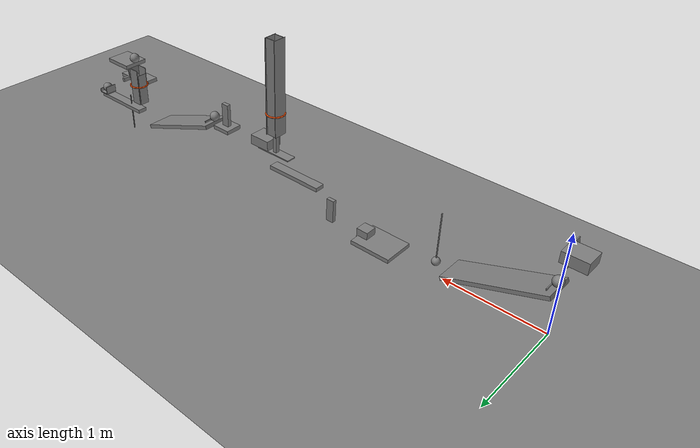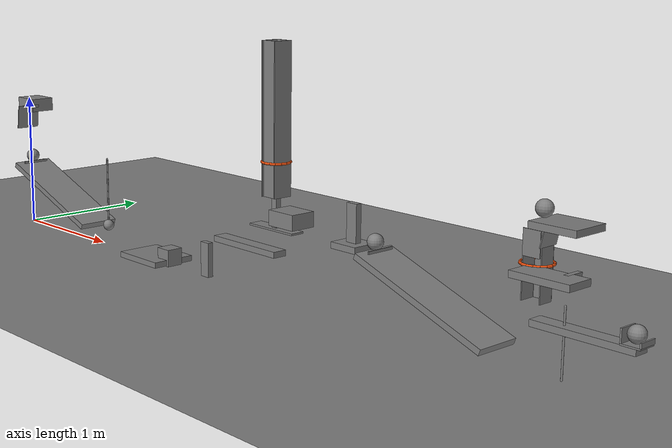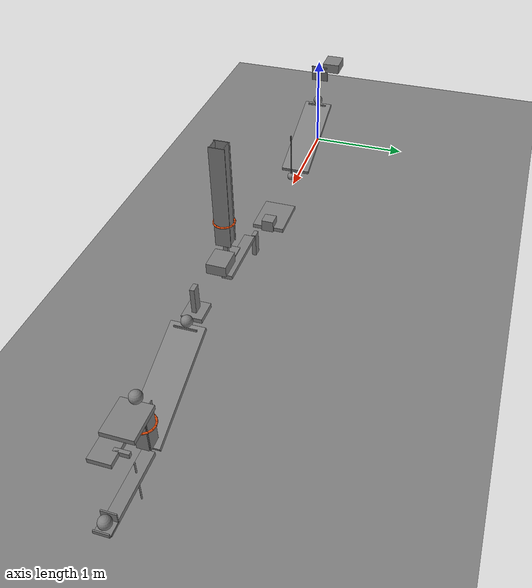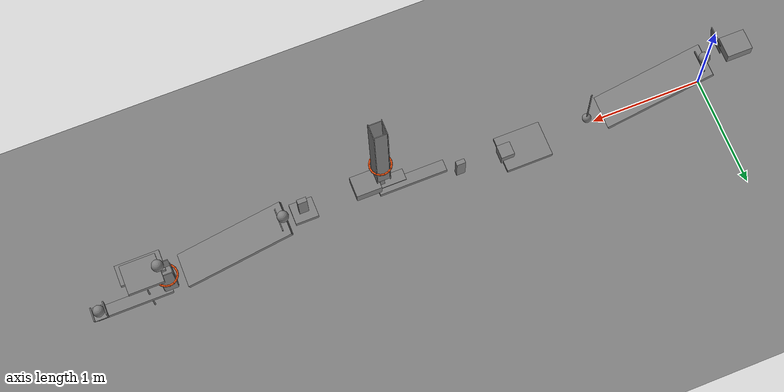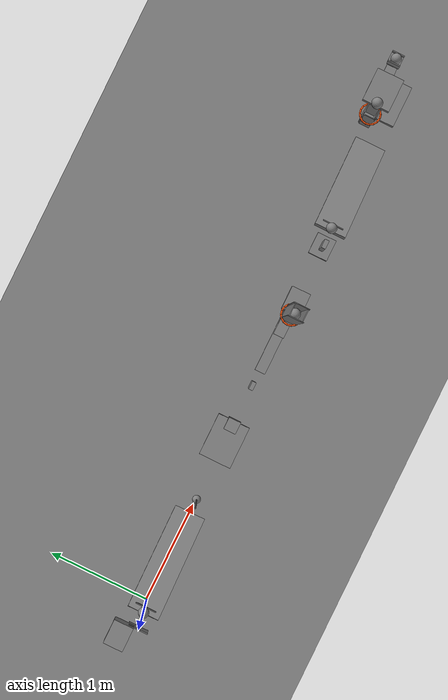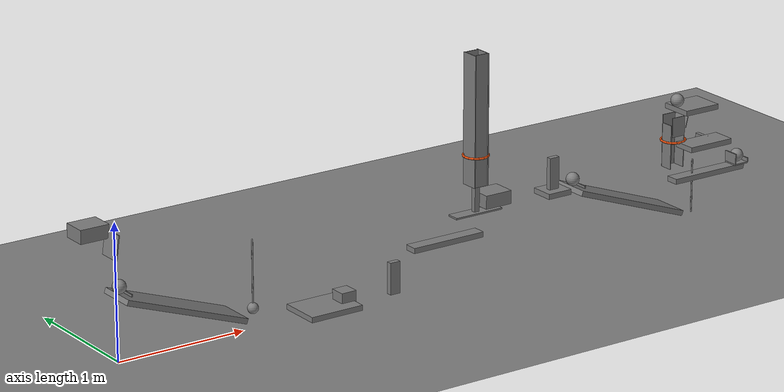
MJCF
<mujoco model="spring_and_gravity_cascade_revision">
  <compiler angle="radian"/>
  <option timestep="0.002"/>
  <worldbody>
    <geom name="floor" type="plane" size="12 12 0.1" friction="0.68 0 0"/>
    <body name="ramp1">
      <geom name="ramp1" type="box" pos="0.469847 0 0.302216" size="0.5 0.15 0.02" euler="0 0.349066 0" friction="0.68 0 0" solref="0.01 0.690107"/>
    </body>
    <body name="ball1 cradle lip">
      <geom name="ball1 cradle lip" type="box" pos="0.063648 0 0.495004" size="0.004 0.1 0.009" friction="0.68 0 0" solref="0.01 0.690107"/>
    </body>
    <body name="ball1" pos="0.023941 0 0.539004">
      <freejoint/>
      <geom name="ball1" type="sphere" pos="0 0 0" size="0.05" mass="0.2" condim="6" friction="0.68 0 0" solref="0.01 0.690107"/>
    </body>
    <body name="cart1" pos="-0.126059 0.13 0.929004">
      <joint name="cart1_axial_slide" type="slide" pos="0 0 0" axis="0 0 1" limited="true" range="-0.62 0.2" stiffness="18" springref="0" damping="0.2"/>
      <geom name="cart1" type="box" pos="0 0 0" size="0.11 0.09 0.05" mass="0.5" friction="0.68 0 0" solref="0.01 0.690107"/>
      <geom name="cart1 pushing face" type="box" pos="0.0965255 -0.13 -0.082485" size="0.0899999 0.09 0.004" euler="0 -1.43117 0" mass="0.001" friction="0.68 0 0" solref="0.01 0.690107"/>
    </body>
    <body name="pendulum1" pos="1.07969 0 0.65">
      <joint name="pendulum1_pendulum_hinge" type="hinge" pos="0 0 0" axis="0 1 0" limited="true" range="-0.698132 0" damping="0.04"/>
      <geom name="pendulum1_bob" type="sphere" pos="0 0 -0.5" size="0.04" mass="0.3" friction="0.68 0 0" solref="0.01 0.690107"/>
      <geom name="pendulum1_rod" type="capsule" size="0.006" fromto="0 0 0 0 0 -0.46" mass="0.05" friction="0.68 0 0" solref="0.01 0.690107"/>
    </body>
    <body name="door1" pos="1.46109 0 0.025">
      <joint name="door1_hinge" type="hinge" pos="0 0 0" axis="0 1 0" limited="true" range="-1.5708 -0.349066" damping="0.04"/>
      <geom name="door1" type="box" pos="0.21 0 0" size="0.21 0.16 0.02" mass="0.45" friction="0.68 0 0" solref="0.01 0.690107"/>
    </body>
    <body name="block1" pos="1.83709 0 0.06">
      <freejoint/>
      <geom name="block1" type="box" pos="0 0 0" size="0.06 0.06 0.06" mass="0.35" friction="0.68 0 0" solref="0.01 0.690107"/>
    </body>
    <body name="domino1" pos="2.25709 0 0.12">
      <freejoint/>
      <geom name="domino1" type="box" pos="0 0 0" size="0.04 0.02 0.12" mass="0.25" friction="0.68 0 0" solref="0.01 0.690107"/>
    </body>
    <body name="lever1" pos="2.70197 0 0.300841">
      <joint name="lever1_hinge" type="hinge" pos="0 0 0" axis="0 1 0" limited="true" range="-1.27409 -0.488692" damping="0.04"/>
      <geom name="lever1" type="box" pos="0 0 0" size="0.3 0.05 0.02" mass="0.5" friction="0.68 0 0" solref="0.01 0.690107"/>
    </body>
    <body name="lever1 follower" pos="2.96685 0 0.464">
      <joint name="lever1_follower_slide" type="slide" pos="0 0 0" axis="0 0 1" limited="true" range="-0.01 0.3" damping="0.2"/>
      <geom name="lever1 follower" type="box" pos="0 0 0" size="0.2 0.05 0.006" mass="0.006" friction="0.68 0 0" solref="0.01 0.690107"/>
      <geom name="lever1 follower stem" type="box" pos="0 0 0.346" size="0.02 0.02 0.34" mass="0.002" friction="0.68 0 0" solref="0.01 0.690107"/>
      <geom name="lever1 ball seat" type="box" pos="0 0 0.692" size="0.045 0.045 0.006" mass="0.002" friction="0.68 0 0" solref="0.01 0.690107"/>
    </body>
    <body name="ball2" pos="2.96685 0 1.212">
      <freejoint/>
      <geom name="ball2" type="sphere" pos="0 0 0" size="0.05" mass="0.2" condim="6" friction="0.68 0 0" solref="0.01 0.690107"/>
    </body>
    <body name="ball2 guide near">
      <geom name="ball2 guide near" type="box" pos="2.90985 0 1.16" size="0.003 0.07 0.49" friction="0.68 0 0" solref="0.01 0.690107"/>
    </body>
    <body name="ball2 guide far">
      <geom name="ball2 guide far" type="box" pos="3.02386 0 1.16" size="0.003 0.07 0.49" friction="0.68 0 0" solref="0.01 0.690107"/>
    </body>
    <body name="ball2 guide left">
      <geom name="ball2 guide left" type="box" pos="2.96685 0.057 1.16" size="0.054 0.003 0.49" friction="0.68 0 0" solref="0.01 0.690107"/>
    </body>
    <body name="ball2 guide right">
      <geom name="ball2 guide right" type="box" pos="2.96685 -0.057 1.16" size="0.054 0.003 0.49" friction="0.68 0 0" solref="0.01 0.690107"/>
    </body>
    <body name="ring1">
      <geom name="ring1_00" type="capsule" size="0.008" fromto="3.05885 0 0.892 3.05185 0.0352069 0.892" friction="0.68 0 0" solref="0.01 0.690107" rgba="0.9 0.3 0.05 1"/>
      <geom name="ring1_01" type="capsule" size="0.008" fromto="3.05185 0.0352069 0.892 3.03191 0.0650538 0.892" friction="0.68 0 0" solref="0.01 0.690107" rgba="0.9 0.3 0.05 1"/>
      <geom name="ring1_02" type="capsule" size="0.008" fromto="3.03191 0.0650538 0.892 3.00206 0.0849969 0.892" friction="0.68 0 0" solref="0.01 0.690107" rgba="0.9 0.3 0.05 1"/>
      <geom name="ring1_03" type="capsule" size="0.008" fromto="3.00206 0.0849969 0.892 2.96685 0.092 0.892" friction="0.68 0 0" solref="0.01 0.690107" rgba="0.9 0.3 0.05 1"/>
      <geom name="ring1_04" type="capsule" size="0.008" fromto="2.96685 0.092 0.892 2.93165 0.0849969 0.892" friction="0.68 0 0" solref="0.01 0.690107" rgba="0.9 0.3 0.05 1"/>
      <geom name="ring1_05" type="capsule" size="0.008" fromto="2.93165 0.0849969 0.892 2.9018 0.0650538 0.892" friction="0.68 0 0" solref="0.01 0.690107" rgba="0.9 0.3 0.05 1"/>
      <geom name="ring1_06" type="capsule" size="0.008" fromto="2.9018 0.0650538 0.892 2.88186 0.0352069 0.892" friction="0.68 0 0" solref="0.01 0.690107" rgba="0.9 0.3 0.05 1"/>
      <geom name="ring1_07" type="capsule" size="0.008" fromto="2.88186 0.0352069 0.892 2.87485 1.12668e-17 0.892" friction="0.68 0 0" solref="0.01 0.690107" rgba="0.9 0.3 0.05 1"/>
      <geom name="ring1_08" type="capsule" size="0.008" fromto="2.87485 1.12668e-17 0.892 2.88186 -0.0352069 0.892" friction="0.68 0 0" solref="0.01 0.690107" rgba="0.9 0.3 0.05 1"/>
      <geom name="ring1_09" type="capsule" size="0.008" fromto="2.88186 -0.0352069 0.892 2.9018 -0.0650538 0.892" friction="0.68 0 0" solref="0.01 0.690107" rgba="0.9 0.3 0.05 1"/>
      <geom name="ring1_10" type="capsule" size="0.008" fromto="2.9018 -0.0650538 0.892 2.93165 -0.0849969 0.892" friction="0.68 0 0" solref="0.01 0.690107" rgba="0.9 0.3 0.05 1"/>
      <geom name="ring1_11" type="capsule" size="0.008" fromto="2.93165 -0.0849969 0.892 2.96685 -0.092 0.892" friction="0.68 0 0" solref="0.01 0.690107" rgba="0.9 0.3 0.05 1"/>
      <geom name="ring1_12" type="capsule" size="0.008" fromto="2.96685 -0.092 0.892 3.00206 -0.0849969 0.892" friction="0.68 0 0" solref="0.01 0.690107" rgba="0.9 0.3 0.05 1"/>
      <geom name="ring1_13" type="capsule" size="0.008" fromto="3.00206 -0.0849969 0.892 3.03191 -0.0650538 0.892" friction="0.68 0 0" solref="0.01 0.690107" rgba="0.9 0.3 0.05 1"/>
      <geom name="ring1_14" type="capsule" size="0.008" fromto="3.03191 -0.0650538 0.892 3.05185 -0.0352069 0.892" friction="0.68 0 0" solref="0.01 0.690107" rgba="0.9 0.3 0.05 1"/>
      <geom name="ring1_15" type="capsule" size="0.008" fromto="3.05185 -0.0352069 0.892 3.05885 -2.25335e-17 0.892" friction="0.68 0 0" solref="0.01 0.690107" rgba="0.9 0.3 0.05 1"/>
    </body>
    <body name="cart2" pos="3.10685 0 0.552">
      <joint name="cart2_slide" type="slide" pos="0 0 0" axis="1 0 0" limited="true" range="0 0.44" damping="0.2"/>
      <geom name="cart2" type="box" pos="0 0 0" size="0.11 0.09 0.05" mass="0.5" friction="0.68 0 0" solref="0.01 0.690107"/>
    </body>
    <body name="domino2 platform">
      <geom name="domino2 platform" type="box" pos="3.65686 0 0.482" size="0.1 0.09 0.02" friction="0.68 0 0" solref="0.01 0.690107"/>
    </body>
    <body name="domino2" pos="3.65686 0 0.622">
      <freejoint/>
      <geom name="domino2" type="box" pos="0 0 0" size="0.04 0.02 0.12" mass="0.25" friction="0.68 0 0" solref="0.01 0.690107"/>
    </body>
    <body name="ramp2">
      <geom name="ramp2" type="box" pos="4.28276 0 0.302216" size="0.5 0.15 0.02" euler="0 0.349066 0" friction="0.68 0 0" solref="0.01 0.690107"/>
    </body>
    <body name="ball3 cradle lip">
      <geom name="ball3 cradle lip" type="box" pos="3.87656 0 0.495004" size="0.004 0.1 0.009" friction="0.68 0 0" solref="0.01 0.690107"/>
    </body>
    <body name="ball3" pos="3.83685 0 0.539004">
      <freejoint/>
      <geom name="ball3" type="sphere" pos="0 0 0" size="0.05" mass="0.2" condim="6" friction="0.68 0 0" solref="0.01 0.690107"/>
    </body>
    <body name="flap1" pos="4.87261 0 0.58">
      <joint name="flap1_hinge" type="hinge" pos="0 0 0" axis="0 1 0" limited="true" range="0.523599 1.5708" damping="0.04"/>
      <geom name="flap1" type="box" pos="0.19 0 0" size="0.19 0.09 0.02" mass="0.28" friction="0.68 0 0" solref="0.01 0.690107"/>
      <geom name="flap1 striker" type="box" pos="0.26 0.105 0" size="0.015 0.06 0.02" mass="0.001" friction="0.68 0 0" solref="0.01 0.690107"/>
    </body>
    <body name="pendulum2" pos="5.07261 0.14 0.404866">
      <joint name="pendulum2_pendulum_hinge" type="hinge" pos="0 0 0" axis="0 1 0" limited="true" range="-3.28122 -2.61799" damping="0.04"/>
      <geom name="pendulum2_bob" type="sphere" pos="0 0 -0.5" size="0.04" mass="0.3" friction="0.68 0 0" solref="0.01 0.690107"/>
      <geom name="pendulum2_rod" type="capsule" size="0.006" fromto="0 0 0 0 0 -0.46" mass="0.05" friction="0.68 0 0" solref="0.01 0.690107"/>
    </body>
    <body name="shelf1">
      <geom name="shelf1" type="box" pos="5.05302 0.14 0.83" size="0.15 0.125 0.02" friction="0.68 0 0" solref="0.01 0.690107"/>
    </body>
    <body name="ball4" pos="4.91302 0.14 0.9">
      <freejoint/>
      <geom name="ball4" type="sphere" pos="0 0 0" size="0.05" mass="0.2" condim="6" friction="0.68 0 0" solref="0.01 0.690107"/>
    </body>
    <body name="ball4 deflector">
      <geom name="ball4 deflector" type="box" pos="4.95802 0.14 0.765" size="0.0667083 0.07 0.003" euler="0 1.7976 0" friction="0.68 0 0" solref="0.01 0.690107"/>
    </body>
    <body name="ball4 guide near">
      <geom name="ball4 guide near" type="box" pos="4.82302 0.14 0.56" size="0.003 0.05 0.17" friction="0.68 0 0" solref="0.01 0.690107"/>
    </body>
    <body name="ball4 guide far">
      <geom name="ball4 guide far" type="box" pos="4.94302 0.14 0.545" size="0.003 0.05 0.155" friction="0.68 0 0" solref="0.01 0.690107"/>
    </body>
    <body name="ball4 guide left">
      <geom name="ball4 guide left" type="box" pos="4.88302 0.197 0.59" size="0.057 0.003 0.2" friction="0.68 0 0" solref="0.01 0.690107"/>
    </body>
    <body name="ball4 guide right">
      <geom name="ball4 guide right" type="box" pos="4.88302 0.083 0.715" size="0.057 0.003 0.075" friction="0.68 0 0" solref="0.01 0.690107"/>
    </body>
    <body name="ring2">
      <geom name="ring2_00" type="capsule" size="0.008" fromto="4.97502 0.14 0.6 4.96802 0.175207 0.6" friction="0.68 0 0" solref="0.01 0.690107" rgba="0.9 0.3 0.05 1"/>
      <geom name="ring2_01" type="capsule" size="0.008" fromto="4.96802 0.175207 0.6 4.94807 0.205054 0.6" friction="0.68 0 0" solref="0.01 0.690107" rgba="0.9 0.3 0.05 1"/>
      <geom name="ring2_02" type="capsule" size="0.008" fromto="4.94807 0.205054 0.6 4.91823 0.224997 0.6" friction="0.68 0 0" solref="0.01 0.690107" rgba="0.9 0.3 0.05 1"/>
      <geom name="ring2_03" type="capsule" size="0.008" fromto="4.91823 0.224997 0.6 4.88302 0.232 0.6" friction="0.68 0 0" solref="0.01 0.690107" rgba="0.9 0.3 0.05 1"/>
      <geom name="ring2_04" type="capsule" size="0.008" fromto="4.88302 0.232 0.6 4.84781 0.224997 0.6" friction="0.68 0 0" solref="0.01 0.690107" rgba="0.9 0.3 0.05 1"/>
      <geom name="ring2_05" type="capsule" size="0.008" fromto="4.84781 0.224997 0.6 4.81797 0.205054 0.6" friction="0.68 0 0" solref="0.01 0.690107" rgba="0.9 0.3 0.05 1"/>
      <geom name="ring2_06" type="capsule" size="0.008" fromto="4.81797 0.205054 0.6 4.79802 0.175207 0.6" friction="0.68 0 0" solref="0.01 0.690107" rgba="0.9 0.3 0.05 1"/>
      <geom name="ring2_07" type="capsule" size="0.008" fromto="4.79802 0.175207 0.6 4.79102 0.14 0.6" friction="0.68 0 0" solref="0.01 0.690107" rgba="0.9 0.3 0.05 1"/>
      <geom name="ring2_08" type="capsule" size="0.008" fromto="4.79102 0.14 0.6 4.79802 0.104793 0.6" friction="0.68 0 0" solref="0.01 0.690107" rgba="0.9 0.3 0.05 1"/>
      <geom name="ring2_09" type="capsule" size="0.008" fromto="4.79802 0.104793 0.6 4.81797 0.0749462 0.6" friction="0.68 0 0" solref="0.01 0.690107" rgba="0.9 0.3 0.05 1"/>
      <geom name="ring2_10" type="capsule" size="0.008" fromto="4.81797 0.0749462 0.6 4.84781 0.0550031 0.6" friction="0.68 0 0" solref="0.01 0.690107" rgba="0.9 0.3 0.05 1"/>
      <geom name="ring2_11" type="capsule" size="0.008" fromto="4.84781 0.0550031 0.6 4.88302 0.048 0.6" friction="0.68 0 0" solref="0.01 0.690107" rgba="0.9 0.3 0.05 1"/>
      <geom name="ring2_12" type="capsule" size="0.008" fromto="4.88302 0.048 0.6 4.91823 0.0550031 0.6" friction="0.68 0 0" solref="0.01 0.690107" rgba="0.9 0.3 0.05 1"/>
      <geom name="ring2_13" type="capsule" size="0.008" fromto="4.91823 0.0550031 0.6 4.94807 0.0749462 0.6" friction="0.68 0 0" solref="0.01 0.690107" rgba="0.9 0.3 0.05 1"/>
      <geom name="ring2_14" type="capsule" size="0.008" fromto="4.94807 0.0749462 0.6 4.96802 0.104793 0.6" friction="0.68 0 0" solref="0.01 0.690107" rgba="0.9 0.3 0.05 1"/>
      <geom name="ring2_15" type="capsule" size="0.008" fromto="4.96802 0.104793 0.6 4.97502 0.14 0.6" friction="0.68 0 0" solref="0.01 0.690107" rgba="0.9 0.3 0.05 1"/>
    </body>
    <body name="seesaw1" pos="5.20802 0.14 0.28">
      <joint name="seesaw1_hinge" type="hinge" pos="0 0 0" axis="0 1 0" limited="true" range="-0.733038 0" damping="0.04"/>
      <geom name="seesaw1" type="box" pos="0 0 0" size="0.325 0.05 0.02" mass="0.55" friction="0.68 0 0" solref="0.01 0.690107"/>
      <geom name="seesaw1 ball seat" type="box" pos="0.295 0 0.025" size="0.06 0.06 0.005" mass="0.002" friction="0.68 0 0" solref="0.01 0.690107"/>
      <geom name="seesaw1 scoop back" type="box" pos="0.24 0 0.07" size="0.005 0.06 0.04" mass="0.001" friction="0.68 0 0" solref="0.01 0.690107"/>
      <geom name="seesaw1 scoop far lip" type="box" pos="0.355 0 0.045" size="0.005 0.06 0.015" mass="0.001" friction="0.68 0 0" solref="0.01 0.690107"/>
    </body>
    <body name="ball5" pos="5.50302 0.14 0.36">
      <freejoint/>
      <geom name="ball5" type="sphere" pos="0 0 0" size="0.05" mass="0.2" condim="6" friction="0.68 0 0" solref="0.01 0.690107"/>
    </body>
  </worldbody>
  <keyframe>
    <key name="start" qpos="0.023941 0 0.539004 1 0 0 0 0.2 0 -1.5708 1.83709 0 0.06 1 0 0 0 2.25709 0 0.12 1 0 0 0 -0.488692 0 2.96685 0 1.212 1 0 0 0 0 3.65686 0 0.622 1 0 0 0 3.83685 0 0.539004 1 0 0 0 1.5708 -2.61799 4.91302 0.14 0.9 1 0 0 0 0 5.50302 0.14 0.36 1 0 0 0" qvel="0 0 0 0 0 0 0 0 0 0 0 0 0 0 0 0 0 0 0 0 0 0 0 0 0 0 0 0 0 0 0 0 0 0 0 0 0 0 0 0 0 0 0 0 0 0 0 0 0 0 0 0 0 0 0 0 0"/>
  </keyframe>
</mujoco>
